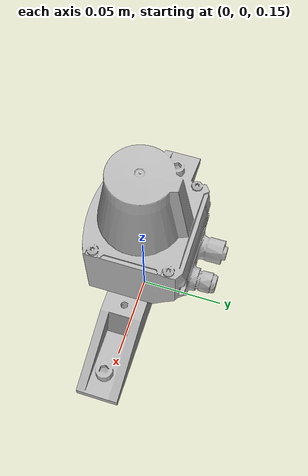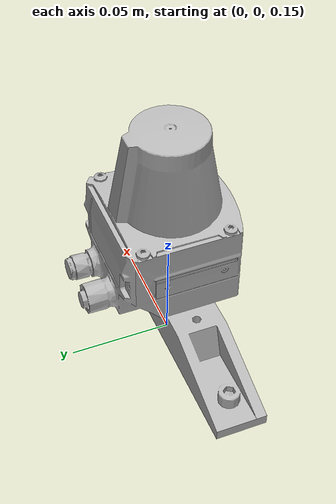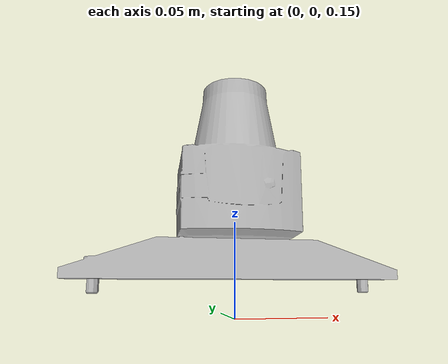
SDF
<sdf version="1.7">
  <model name="lidar">
    <static>false</static>
    <link name="lidar_link">
      <pose>0 0 0.17 0 0 0</pose>

      <!-- Visual representation -->
      <visual name="lidar_visual">
        <geometry>
          <mesh>
            <uri>model://tim_lidar/meshes/tim_lidar.dae</uri>
            <scale>0.01 0.01 0.01</scale>
          </mesh>
        </geometry>

      </visual>

      <!-- Collision geometry -->
      <collision name="lidar_collision">
        <pose>0.015 0 0 0 1.57079 0</pose>
        <geometry>
          <cylinder>
            <radius>0.15</radius>
            <length>0.11</length>
          </cylinder>
        </geometry>
   <surface>
          <contact>
            <collide_without_contact>false</collide_without_contact>
          </contact>
          <bounce>
            <restitution_coefficient>0.0</restitution_coefficient>
          </bounce>
          <friction>
            <ode>
              <mu>1.0</mu>
              <mu2>1.0</mu2>
            </ode>
          </friction>
        </surface>
      </collision>

      <!-- Inertial properties -->
      <inertial>
        <mass>1.5</mass>
        <inertia>
          <ixx>0.001</ixx>
          <iyy>0.001</iyy>
          <izz>0.001</izz>
        </inertia>
      </inertial>
    </link>
  </model>
</sdf>
